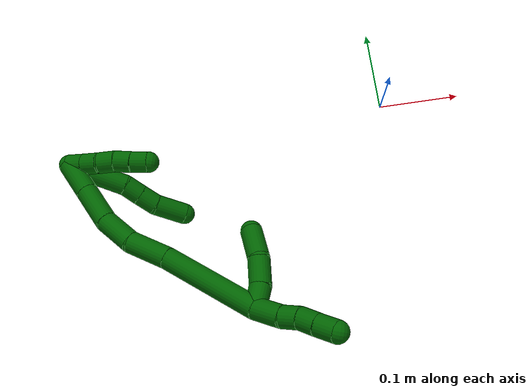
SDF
<sdf version="1.7">
 <world name="default">
  <model name="6">
   <static>0</static>
   <link name="6">
    <collision name="collision-cylinder-e_1_2_8">
     <pose>0.001189 -0.005785 -0.034299 2.97449 0.034183 0.402692</pose>
     <geometry><cylinder><radius>0.0125</radius><length>0.069607</length></cylinder></geometry>
     <surface>
      <friction><ode><mu>1.16</mu><mu2>1.16</mu2><slip1>0</slip1><slip2>0</slip2></ode></friction>
      <contact><ode><kp>1e+06</kp><kd>1</kd><max_vel>0</max_vel><min_depth>0.001</min_depth></ode></contact>
     </surface>
    </collision>
    <visual name="visual-cylinder-e_1_2_8">
     <pose>0.001189 -0.005785 -0.034299 2.97449 0.034183 0.402692</pose>
     <geometry><cylinder><radius>0.0125</radius><length>0.069607</length></cylinder></geometry>
     <material><ambient>0 0.392157 0.003922 1</ambient></material>
    </visual>
    <collision name="collision-cylinder-e_2_8_9">
     <pose>0.00352 -0.015585 -0.07815 2.74372 0.109656 0.531586</pose>
     <geometry><cylinder><radius>0.0125</radius><length>0.020849</length></cylinder></geometry>
     <surface>
      <friction><ode><mu>1.16</mu><mu2>1.16</mu2><slip1>0</slip1><slip2>0</slip2></ode></friction>
      <contact><ode><kp>1e+06</kp><kd>1</kd><max_vel>0</max_vel><min_depth>0.001</min_depth></ode></contact>
     </surface>
    </collision>
    <visual name="visual-cylinder-e_2_8_9">
     <pose>0.00352 -0.015585 -0.07815 2.74372 0.109656 0.531586</pose>
     <geometry><cylinder><radius>0.0125</radius><length>0.020849</length></cylinder></geometry>
     <material><ambient>0 0.392157 0.003922 1</ambient></material>
    </visual>
    <collision name="collision-cylinder-e_3_9_10">
     <pose>0.00586 -0.023644 -0.097995 2.76726 0.108067 0.556364</pose>
     <geometry><cylinder><radius>0.0125</radius><length>0.022248</length></cylinder></geometry>
     <surface>
      <friction><ode><mu>1.16</mu><mu2>1.16</mu2><slip1>0</slip1><slip2>0</slip2></ode></friction>
      <contact><ode><kp>1e+06</kp><kd>1</kd><max_vel>0</max_vel><min_depth>0.001</min_depth></ode></contact>
     </surface>
    </collision>
    <visual name="visual-cylinder-e_3_9_10">
     <pose>0.00586 -0.023644 -0.097995 2.76726 0.108067 0.556364</pose>
     <geometry><cylinder><radius>0.0125</radius><length>0.022248</length></cylinder></geometry>
     <material><ambient>0 0.392157 0.003922 1</ambient></material>
    </visual>
    <collision name="collision-cylinder-e_4_10_6">
     <pose>0.005109 -0.031378 -0.126463 2.94125 -0.104801 -0.961918</pose>
     <geometry><cylinder><radius>0.0125</radius><length>0.037296</length></cylinder></geometry>
     <surface>
      <friction><ode><mu>1.16</mu><mu2>1.16</mu2><slip1>0</slip1><slip2>0</slip2></ode></friction>
      <contact><ode><kp>1e+06</kp><kd>1</kd><max_vel>0</max_vel><min_depth>0.001</min_depth></ode></contact>
     </surface>
    </collision>
    <visual name="visual-cylinder-e_4_10_6">
     <pose>0.005109 -0.031378 -0.126463 2.94125 -0.104801 -0.961918</pose>
     <geometry><cylinder><radius>0.0125</radius><length>0.037296</length></cylinder></geometry>
     <material><ambient>0 0.392157 0.003922 1</ambient></material>
    </visual>
    <collision name="collision-cylinder-e_1_2_11">
     <pose>0.003006 0.003952 -0.00868 -2.71432 0.3053 -1.23368</pose>
     <geometry><cylinder><radius>0.0125</radius><length>0.02</length></cylinder></geometry>
     <surface>
      <friction><ode><mu>1.16</mu><mu2>1.16</mu2><slip1>0</slip1><slip2>0</slip2></ode></friction>
      <contact><ode><kp>1e+06</kp><kd>1</kd><max_vel>0</max_vel><min_depth>0.001</min_depth></ode></contact>
     </surface>
    </collision>
    <visual name="visual-cylinder-e_1_2_11">
     <pose>0.003006 0.003952 -0.00868 -2.71432 0.3053 -1.23368</pose>
     <geometry><cylinder><radius>0.0125</radius><length>0.02</length></cylinder></geometry>
     <material><ambient>0 0.392157 0.003922 1</ambient></material>
    </visual>
    <collision name="collision-cylinder-e_2_11_12">
     <pose>0.009183 0.012041 -0.025894 -2.69029 0.322747 -1.23366</pose>
     <geometry><cylinder><radius>0.0125</radius><length>0.02</length></cylinder></geometry>
     <surface>
      <friction><ode><mu>1.16</mu><mu2>1.16</mu2><slip1>0</slip1><slip2>0</slip2></ode></friction>
      <contact><ode><kp>1e+06</kp><kd>1</kd><max_vel>0</max_vel><min_depth>0.001</min_depth></ode></contact>
     </surface>
    </collision>
    <visual name="visual-cylinder-e_2_11_12">
     <pose>0.009183 0.012041 -0.025894 -2.69029 0.322747 -1.23366</pose>
     <geometry><cylinder><radius>0.0125</radius><length>0.02</length></cylinder></geometry>
     <material><ambient>0 0.392157 0.003922 1</ambient></material>
    </visual>
    <collision name="collision-cylinder-e_3_12_13">
     <pose>0.013674 0.019978 -0.043583 -2.74803 0.132251 -0.641407</pose>
     <geometry><cylinder><radius>0.0125</radius><length>0.02</length></cylinder></geometry>
     <surface>
      <friction><ode><mu>1.16</mu><mu2>1.16</mu2><slip1>0</slip1><slip2>0</slip2></ode></friction>
      <contact><ode><kp>1e+06</kp><kd>1</kd><max_vel>0</max_vel><min_depth>0.001</min_depth></ode></contact>
     </surface>
    </collision>
    <visual name="visual-cylinder-e_3_12_13">
     <pose>0.013674 0.019978 -0.043583 -2.74803 0.132251 -0.641407</pose>
     <geometry><cylinder><radius>0.0125</radius><length>0.02</length></cylinder></geometry>
     <material><ambient>0 0.392157 0.003922 1</ambient></material>
    </visual>
    <collision name="collision-cylinder-e_4_13_14">
     <pose>0.017053 0.026218 -0.062215 -2.88977 0.207517 -1.37679</pose>
     <geometry><cylinder><radius>0.0125</radius><length>0.02</length></cylinder></geometry>
     <surface>
      <friction><ode><mu>1.16</mu><mu2>1.16</mu2><slip1>0</slip1><slip2>0</slip2></ode></friction>
      <contact><ode><kp>1e+06</kp><kd>1</kd><max_vel>0</max_vel><min_depth>0.001</min_depth></ode></contact>
     </surface>
    </collision>
    <visual name="visual-cylinder-e_4_13_14">
     <pose>0.017053 0.026218 -0.062215 -2.88977 0.207517 -1.37679</pose>
     <geometry><cylinder><radius>0.0125</radius><length>0.02</length></cylinder></geometry>
     <material><ambient>0 0.392157 0.003922 1</ambient></material>
    </visual>
    <collision name="collision-cylinder-e_5_14_5">
     <pose>0.020512 0.031311 -0.081231 -2.87018 0.140332 -0.950704</pose>
     <geometry><cylinder><radius>0.0125</radius><length>0.02</length></cylinder></geometry>
     <surface>
      <friction><ode><mu>1.16</mu><mu2>1.16</mu2><slip1>0</slip1><slip2>0</slip2></ode></friction>
      <contact><ode><kp>1e+06</kp><kd>1</kd><max_vel>0</max_vel><min_depth>0.001</min_depth></ode></contact>
     </surface>
    </collision>
    <visual name="visual-cylinder-e_5_14_5">
     <pose>0.020512 0.031311 -0.081231 -2.87018 0.140332 -0.950704</pose>
     <geometry><cylinder><radius>0.0125</radius><length>0.02</length></cylinder></geometry>
     <material><ambient>0 0.392157 0.003922 1</ambient></material>
    </visual>
    <collision name="collision-cylinder-e_1_2_15">
     <pose>0.016916 -0.006409 -0.013903 2.70964 0.835214 2.22316</pose>
     <geometry><cylinder><radius>0.0125</radius><length>0.045631</length></cylinder></geometry>
     <surface>
      <friction><ode><mu>1.16</mu><mu2>1.16</mu2><slip1>0</slip1><slip2>0</slip2></ode></friction>
      <contact><ode><kp>1e+06</kp><kd>1</kd><max_vel>0</max_vel><min_depth>0.001</min_depth></ode></contact>
     </surface>
    </collision>
    <visual name="visual-cylinder-e_1_2_15">
     <pose>0.016916 -0.006409 -0.013903 2.70964 0.835214 2.22316</pose>
     <geometry><cylinder><radius>0.0125</radius><length>0.045631</length></cylinder></geometry>
     <material><ambient>0 0.392157 0.003922 1</ambient></material>
    </visual>
    <collision name="collision-cylinder-e_2_15_16">
     <pose>0.051536 -0.019598 -0.042298 2.70404 0.835922 2.21333</pose>
     <geometry><cylinder><radius>0.0125</radius><length>0.047723</length></cylinder></geometry>
     <surface>
      <friction><ode><mu>1.16</mu><mu2>1.16</mu2><slip1>0</slip1><slip2>0</slip2></ode></friction>
      <contact><ode><kp>1e+06</kp><kd>1</kd><max_vel>0</max_vel><min_depth>0.001</min_depth></ode></contact>
     </surface>
    </collision>
    <visual name="visual-cylinder-e_2_15_16">
     <pose>0.051536 -0.019598 -0.042298 2.70404 0.835922 2.21333</pose>
     <geometry><cylinder><radius>0.0125</radius><length>0.047723</length></cylinder></geometry>
     <material><ambient>0 0.392157 0.003922 1</ambient></material>
    </visual>
    <collision name="collision-cylinder-e_3_16_17">
     <pose>0.083128 -0.028652 -0.07283 3.00066 0.708748 2.76459</pose>
     <geometry><cylinder><radius>0.0125</radius><length>0.042679</length></cylinder></geometry>
     <surface>
      <friction><ode><mu>1.16</mu><mu2>1.16</mu2><slip1>0</slip1><slip2>0</slip2></ode></friction>
      <contact><ode><kp>1e+06</kp><kd>1</kd><max_vel>0</max_vel><min_depth>0.001</min_depth></ode></contact>
     </surface>
    </collision>
    <visual name="visual-cylinder-e_3_16_17">
     <pose>0.083128 -0.028652 -0.07283 3.00066 0.708748 2.76459</pose>
     <geometry><cylinder><radius>0.0125</radius><length>0.042679</length></cylinder></geometry>
     <material><ambient>0 0.392157 0.003922 1</ambient></material>
    </visual>
    <collision name="collision-cylinder-e_4_17_18">
     <pose>0.107886 -0.030344 -0.110122 -3.11414 0.472553 -3.0277</pose>
     <geometry><cylinder><radius>0.0125</radius><length>0.047754</length></cylinder></geometry>
     <surface>
      <friction><ode><mu>1.16</mu><mu2>1.16</mu2><slip1>0</slip1><slip2>0</slip2></ode></friction>
      <contact><ode><kp>1e+06</kp><kd>1</kd><max_vel>0</max_vel><min_depth>0.001</min_depth></ode></contact>
     </surface>
    </collision>
    <visual name="visual-cylinder-e_4_17_18">
     <pose>0.107886 -0.030344 -0.110122 -3.11414 0.472553 -3.0277</pose>
     <geometry><cylinder><radius>0.0125</radius><length>0.047754</length></cylinder></geometry>
     <material><ambient>0 0.392157 0.003922 1</ambient></material>
    </visual>
    <collision name="collision-cylinder-e_5_18_1">
     <pose>0.149106 -0.031987 -0.180873 3.09666 0.549614 2.98253</pose>
     <geometry><cylinder><radius>0.0125</radius><length>0.116214</length></cylinder></geometry>
     <surface>
      <friction><ode><mu>1.16</mu><mu2>1.16</mu2><slip1>0</slip1><slip2>0</slip2></ode></friction>
      <contact><ode><kp>1e+06</kp><kd>1</kd><max_vel>0</max_vel><min_depth>0.001</min_depth></ode></contact>
     </surface>
    </collision>
    <visual name="visual-cylinder-e_5_18_1">
     <pose>0.149106 -0.031987 -0.180873 3.09666 0.549614 2.98253</pose>
     <geometry><cylinder><radius>0.0125</radius><length>0.116214</length></cylinder></geometry>
     <material><ambient>0 0.392157 0.003922 1</ambient></material>
    </visual>
    <collision name="collision-cylinder-e_1_1_19">
     <pose>0.189331 -0.029863 -0.243354 -2.8183 0.624753 -2.20642</pose>
     <geometry><cylinder><radius>0.0125</radius><length>0.033759</length></cylinder></geometry>
     <surface>
      <friction><ode><mu>1.16</mu><mu2>1.16</mu2><slip1>0</slip1><slip2>0</slip2></ode></friction>
      <contact><ode><kp>1e+06</kp><kd>1</kd><max_vel>0</max_vel><min_depth>0.001</min_depth></ode></contact>
     </surface>
    </collision>
    <visual name="visual-cylinder-e_1_1_19">
     <pose>0.189331 -0.029863 -0.243354 -2.8183 0.624753 -2.20642</pose>
     <geometry><cylinder><radius>0.0125</radius><length>0.033759</length></cylinder></geometry>
     <material><ambient>0 0.392157 0.003922 1</ambient></material>
    </visual>
    <collision name="collision-cylinder-e_2_19_20">
     <pose>0.203711 -0.021388 -0.264827 -2.68928 0.445476 -1.55504</pose>
     <geometry><cylinder><radius>0.0125</radius><length>0.020921</length></cylinder></geometry>
     <surface>
      <friction><ode><mu>1.16</mu><mu2>1.16</mu2><slip1>0</slip1><slip2>0</slip2></ode></friction>
      <contact><ode><kp>1e+06</kp><kd>1</kd><max_vel>0</max_vel><min_depth>0.001</min_depth></ode></contact>
     </surface>
    </collision>
    <visual name="visual-cylinder-e_2_19_20">
     <pose>0.203711 -0.021388 -0.264827 -2.68928 0.445476 -1.55504</pose>
     <geometry><cylinder><radius>0.0125</radius><length>0.020921</length></cylinder></geometry>
     <material><ambient>0 0.392157 0.003922 1</ambient></material>
    </visual>
    <collision name="collision-cylinder-e_3_20_21">
     <pose>0.215022 -0.014884 -0.281387 -2.85502 0.680032 -2.36711</pose>
     <geometry><cylinder><radius>0.0125</radius><length>0.02164</length></cylinder></geometry>
     <surface>
      <friction><ode><mu>1.16</mu><mu2>1.16</mu2><slip1>0</slip1><slip2>0</slip2></ode></friction>
      <contact><ode><kp>1e+06</kp><kd>1</kd><max_vel>0</max_vel><min_depth>0.001</min_depth></ode></contact>
     </surface>
    </collision>
    <visual name="visual-cylinder-e_3_20_21">
     <pose>0.215022 -0.014884 -0.281387 -2.85502 0.680032 -2.36711</pose>
     <geometry><cylinder><radius>0.0125</radius><length>0.02164</length></cylinder></geometry>
     <material><ambient>0 0.392157 0.003922 1</ambient></material>
    </visual>
    <collision name="collision-cylinder-e_4_21_4">
     <pose>0.228941 -0.009733 -0.298505 -2.84419 0.644651 -2.29828</pose>
     <geometry><cylinder><radius>0.0125</radius><length>0.02368</length></cylinder></geometry>
     <surface>
      <friction><ode><mu>1.16</mu><mu2>1.16</mu2><slip1>0</slip1><slip2>0</slip2></ode></friction>
      <contact><ode><kp>1e+06</kp><kd>1</kd><max_vel>0</max_vel><min_depth>0.001</min_depth></ode></contact>
     </surface>
    </collision>
    <visual name="visual-cylinder-e_4_21_4">
     <pose>0.228941 -0.009733 -0.298505 -2.84419 0.644651 -2.29828</pose>
     <geometry><cylinder><radius>0.0125</radius><length>0.02368</length></cylinder></geometry>
     <material><ambient>0 0.392157 0.003922 1</ambient></material>
    </visual>
    <collision name="collision-cylinder-e_1_1_22">
     <pose>0.168232 -0.027372 -0.231921 -1.79338 -1.01242 1.21323</pose>
     <geometry><cylinder><radius>0.0125</radius><length>0.026475</length></cylinder></geometry>
     <surface>
      <friction><ode><mu>1.16</mu><mu2>1.16</mu2><slip1>0</slip1><slip2>0</slip2></ode></friction>
      <contact><ode><kp>1e+06</kp><kd>1</kd><max_vel>0</max_vel><min_depth>0.001</min_depth></ode></contact>
     </surface>
    </collision>
    <visual name="visual-cylinder-e_1_1_22">
     <pose>0.168232 -0.027372 -0.231921 -1.79338 -1.01242 1.21323</pose>
     <geometry><cylinder><radius>0.0125</radius><length>0.026475</length></cylinder></geometry>
     <material><ambient>0 0.392157 0.003922 1</ambient></material>
    </visual>
    <collision name="collision-cylinder-e_2_22_23">
     <pose>0.143754 -0.011791 -0.230913 -1.28629 -0.968654 0.751162</pose>
     <geometry><cylinder><radius>0.0125</radius><length>0.032157</length></cylinder></geometry>
     <surface>
      <friction><ode><mu>1.16</mu><mu2>1.16</mu2><slip1>0</slip1><slip2>0</slip2></ode></friction>
      <contact><ode><kp>1e+06</kp><kd>1</kd><max_vel>0</max_vel><min_depth>0.001</min_depth></ode></contact>
     </surface>
    </collision>
    <visual name="visual-cylinder-e_2_22_23">
     <pose>0.143754 -0.011791 -0.230913 -1.28629 -0.968654 0.751162</pose>
     <geometry><cylinder><radius>0.0125</radius><length>0.032157</length></cylinder></geometry>
     <material><ambient>0 0.392157 0.003922 1</ambient></material>
    </visual>
    <collision name="collision-cylinder-e_3_23_3">
     <pose>0.11103 0.001818 -0.223363 -0.772704 -1.2269 0.557891</pose>
     <geometry><cylinder><radius>0.0125</radius><length>0.041368</length></cylinder></geometry>
     <surface>
      <friction><ode><mu>1.16</mu><mu2>1.16</mu2><slip1>0</slip1><slip2>0</slip2></ode></friction>
      <contact><ode><kp>1e+06</kp><kd>1</kd><max_vel>0</max_vel><min_depth>0.001</min_depth></ode></contact>
     </surface>
    </collision>
    <visual name="visual-cylinder-e_3_23_3">
     <pose>0.11103 0.001818 -0.223363 -0.772704 -1.2269 0.557891</pose>
     <geometry><cylinder><radius>0.0125</radius><length>0.041368</length></cylinder></geometry>
     <material><ambient>0 0.392157 0.003922 1</ambient></material>
    </visual>
    <collision name="collision-sphere-3">
     <pose>0.091557 0.006687 -0.21837 0 -0 0</pose>
     <geometry><sphere><radius>0.0125</radius></sphere></geometry>
     <surface>
      <friction><ode><mu>1.16</mu><mu2>1.16</mu2><slip1>0</slip1><slip2>0</slip2></ode></friction>
      <contact><ode><kp>1e+06</kp><kd>1</kd><max_vel>0</max_vel><min_depth>0.001</min_depth></ode></contact>
     </surface>
    </collision>
    <visual name="visual-sphere-3">
     <pose>0.091557 0.006687 -0.21837 0 -0 0</pose>
     <geometry><sphere><radius>0.0125</radius></sphere></geometry>
     <material><ambient>0 0.392157 0.003922 1</ambient></material>
    </visual>
    <collision name="collision-sphere-23">
     <pose>0.130503 -0.00305 -0.228357 0 -0 0</pose>
     <geometry><sphere><radius>0.0125</radius></sphere></geometry>
     <surface>
      <friction><ode><mu>1.16</mu><mu2>1.16</mu2><slip1>0</slip1><slip2>0</slip2></ode></friction>
      <contact><ode><kp>1e+06</kp><kd>1</kd><max_vel>0</max_vel><min_depth>0.001</min_depth></ode></contact>
     </surface>
    </collision>
    <visual name="visual-sphere-23">
     <pose>0.130503 -0.00305 -0.228357 0 -0 0</pose>
     <geometry><sphere><radius>0.0125</radius></sphere></geometry>
     <material><ambient>0 0.392157 0.003922 1</ambient></material>
    </visual>
    <collision name="collision-sphere-22">
     <pose>0.157005 -0.020532 -0.233469 0 -0 0</pose>
     <geometry><sphere><radius>0.0125</radius></sphere></geometry>
     <surface>
      <friction><ode><mu>1.16</mu><mu2>1.16</mu2><slip1>0</slip1><slip2>0</slip2></ode></friction>
      <contact><ode><kp>1e+06</kp><kd>1</kd><max_vel>0</max_vel><min_depth>0.001</min_depth></ode></contact>
     </surface>
    </collision>
    <visual name="visual-sphere-22">
     <pose>0.157005 -0.020532 -0.233469 0 -0 0</pose>
     <geometry><sphere><radius>0.0125</radius></sphere></geometry>
     <material><ambient>0 0.392157 0.003922 1</ambient></material>
    </visual>
    <collision name="collision-sphere-4">
     <pose>0.236056 -0.00696 -0.307554 0 -0 0</pose>
     <geometry><sphere><radius>0.0125</radius></sphere></geometry>
     <surface>
      <friction><ode><mu>1.16</mu><mu2>1.16</mu2><slip1>0</slip1><slip2>0</slip2></ode></friction>
      <contact><ode><kp>1e+06</kp><kd>1</kd><max_vel>0</max_vel><min_depth>0.001</min_depth></ode></contact>
     </surface>
    </collision>
    <visual name="visual-sphere-4">
     <pose>0.236056 -0.00696 -0.307554 0 -0 0</pose>
     <geometry><sphere><radius>0.0125</radius></sphere></geometry>
     <material><ambient>0 0.392157 0.003922 1</ambient></material>
    </visual>
    <collision name="collision-sphere-21">
     <pose>0.221826 -0.012506 -0.289457 0 -0 0</pose>
     <geometry><sphere><radius>0.0125</radius></sphere></geometry>
     <surface>
      <friction><ode><mu>1.16</mu><mu2>1.16</mu2><slip1>0</slip1><slip2>0</slip2></ode></friction>
      <contact><ode><kp>1e+06</kp><kd>1</kd><max_vel>0</max_vel><min_depth>0.001</min_depth></ode></contact>
     </surface>
    </collision>
    <visual name="visual-sphere-21">
     <pose>0.221826 -0.012506 -0.289457 0 -0 0</pose>
     <geometry><sphere><radius>0.0125</radius></sphere></geometry>
     <material><ambient>0 0.392157 0.003922 1</ambient></material>
    </visual>
    <collision name="collision-sphere-20">
     <pose>0.208219 -0.017262 -0.273317 0 -0 0</pose>
     <geometry><sphere><radius>0.0125</radius></sphere></geometry>
     <surface>
      <friction><ode><mu>1.16</mu><mu2>1.16</mu2><slip1>0</slip1><slip2>0</slip2></ode></friction>
      <contact><ode><kp>1e+06</kp><kd>1</kd><max_vel>0</max_vel><min_depth>0.001</min_depth></ode></contact>
     </surface>
    </collision>
    <visual name="visual-sphere-20">
     <pose>0.208219 -0.017262 -0.273317 0 -0 0</pose>
     <geometry><sphere><radius>0.0125</radius></sphere></geometry>
     <material><ambient>0 0.392157 0.003922 1</ambient></material>
    </visual>
    <collision name="collision-sphere-11">
     <pose>0.006012 0.007904 -0.01736 0 -0 0</pose>
     <geometry><sphere><radius>0.0125</radius></sphere></geometry>
     <surface>
      <friction><ode><mu>1.16</mu><mu2>1.16</mu2><slip1>0</slip1><slip2>0</slip2></ode></friction>
      <contact><ode><kp>1e+06</kp><kd>1</kd><max_vel>0</max_vel><min_depth>0.001</min_depth></ode></contact>
     </surface>
    </collision>
    <visual name="visual-sphere-11">
     <pose>0.006012 0.007904 -0.01736 0 -0 0</pose>
     <geometry><sphere><radius>0.0125</radius></sphere></geometry>
     <material><ambient>0 0.392157 0.003922 1</ambient></material>
    </visual>
    <collision name="collision-sphere-6">
     <pose>0.003159 -0.035069 -0.144638 0 -0 0</pose>
     <geometry><sphere><radius>0.0125</radius></sphere></geometry>
     <surface>
      <friction><ode><mu>1.16</mu><mu2>1.16</mu2><slip1>0</slip1><slip2>0</slip2></ode></friction>
      <contact><ode><kp>1e+06</kp><kd>1</kd><max_vel>0</max_vel><min_depth>0.001</min_depth></ode></contact>
     </surface>
    </collision>
    <visual name="visual-sphere-6">
     <pose>0.003159 -0.035069 -0.144638 0 -0 0</pose>
     <geometry><sphere><radius>0.0125</radius></sphere></geometry>
     <material><ambient>0 0.392157 0.003922 1</ambient></material>
    </visual>
    <collision name="collision-sphere-10">
     <pose>0.00706 -0.027688 -0.108289 0 -0 0</pose>
     <geometry><sphere><radius>0.0125</radius></sphere></geometry>
     <surface>
      <friction><ode><mu>1.16</mu><mu2>1.16</mu2><slip1>0</slip1><slip2>0</slip2></ode></friction>
      <contact><ode><kp>1e+06</kp><kd>1</kd><max_vel>0</max_vel><min_depth>0.001</min_depth></ode></contact>
     </surface>
    </collision>
    <visual name="visual-sphere-10">
     <pose>0.00706 -0.027688 -0.108289 0 -0 0</pose>
     <geometry><sphere><radius>0.0125</radius></sphere></geometry>
     <material><ambient>0 0.392157 0.003922 1</ambient></material>
    </visual>
    <collision name="collision-sphere-9">
     <pose>0.004661 -0.0196 -0.087702 0 -0 0</pose>
     <geometry><sphere><radius>0.0125</radius></sphere></geometry>
     <surface>
      <friction><ode><mu>1.16</mu><mu2>1.16</mu2><slip1>0</slip1><slip2>0</slip2></ode></friction>
      <contact><ode><kp>1e+06</kp><kd>1</kd><max_vel>0</max_vel><min_depth>0.001</min_depth></ode></contact>
     </surface>
    </collision>
    <visual name="visual-sphere-9">
     <pose>0.004661 -0.0196 -0.087702 0 -0 0</pose>
     <geometry><sphere><radius>0.0125</radius></sphere></geometry>
     <material><ambient>0 0.392157 0.003922 1</ambient></material>
    </visual>
    <collision name="collision-sphere-2">
     <geometry><sphere><radius>0.0125</radius></sphere></geometry>
     <surface>
      <friction><ode><mu>1.16</mu><mu2>1.16</mu2><slip1>0</slip1><slip2>0</slip2></ode></friction>
      <contact><ode><kp>1e+06</kp><kd>1</kd><max_vel>0</max_vel><min_depth>0.001</min_depth></ode></contact>
     </surface>
    </collision>
    <visual name="visual-sphere-2">
     <geometry><sphere><radius>0.0125</radius></sphere></geometry>
     <material><ambient>0 0.392157 0.003922 1</ambient></material>
    </visual>
    <collision name="collision-sphere-19">
     <pose>0.199204 -0.025513 -0.256336 0 -0 0</pose>
     <geometry><sphere><radius>0.0125</radius></sphere></geometry>
     <surface>
      <friction><ode><mu>1.16</mu><mu2>1.16</mu2><slip1>0</slip1><slip2>0</slip2></ode></friction>
      <contact><ode><kp>1e+06</kp><kd>1</kd><max_vel>0</max_vel><min_depth>0.001</min_depth></ode></contact>
     </surface>
    </collision>
    <visual name="visual-sphere-19">
     <pose>0.199204 -0.025513 -0.256336 0 -0 0</pose>
     <geometry><sphere><radius>0.0125</radius></sphere></geometry>
     <material><ambient>0 0.392157 0.003922 1</ambient></material>
    </visual>
    <collision name="collision-sphere-8">
     <pose>0.002379 -0.011571 -0.068598 0 -0 0</pose>
     <geometry><sphere><radius>0.0125</radius></sphere></geometry>
     <surface>
      <friction><ode><mu>1.16</mu><mu2>1.16</mu2><slip1>0</slip1><slip2>0</slip2></ode></friction>
      <contact><ode><kp>1e+06</kp><kd>1</kd><max_vel>0</max_vel><min_depth>0.001</min_depth></ode></contact>
     </surface>
    </collision>
    <visual name="visual-sphere-8">
     <pose>0.002379 -0.011571 -0.068598 0 -0 0</pose>
     <geometry><sphere><radius>0.0125</radius></sphere></geometry>
     <material><ambient>0 0.392157 0.003922 1</ambient></material>
    </visual>
    <collision name="collision-sphere-12">
     <pose>0.012355 0.016177 -0.034429 0 -0 0</pose>
     <geometry><sphere><radius>0.0125</radius></sphere></geometry>
     <surface>
      <friction><ode><mu>1.16</mu><mu2>1.16</mu2><slip1>0</slip1><slip2>0</slip2></ode></friction>
      <contact><ode><kp>1e+06</kp><kd>1</kd><max_vel>0</max_vel><min_depth>0.001</min_depth></ode></contact>
     </surface>
    </collision>
    <visual name="visual-sphere-12">
     <pose>0.012355 0.016177 -0.034429 0 -0 0</pose>
     <geometry><sphere><radius>0.0125</radius></sphere></geometry>
     <material><ambient>0 0.392157 0.003922 1</ambient></material>
    </visual>
    <collision name="collision-sphere-13">
     <pose>0.014992 0.02378 -0.052738 0 -0 0</pose>
     <geometry><sphere><radius>0.0125</radius></sphere></geometry>
     <surface>
      <friction><ode><mu>1.16</mu><mu2>1.16</mu2><slip1>0</slip1><slip2>0</slip2></ode></friction>
      <contact><ode><kp>1e+06</kp><kd>1</kd><max_vel>0</max_vel><min_depth>0.001</min_depth></ode></contact>
     </surface>
    </collision>
    <visual name="visual-sphere-13">
     <pose>0.014992 0.02378 -0.052738 0 -0 0</pose>
     <geometry><sphere><radius>0.0125</radius></sphere></geometry>
     <material><ambient>0 0.392157 0.003922 1</ambient></material>
    </visual>
    <collision name="collision-sphere-14">
     <pose>0.019113 0.028656 -0.071692 0 -0 0</pose>
     <geometry><sphere><radius>0.0125</radius></sphere></geometry>
     <surface>
      <friction><ode><mu>1.16</mu><mu2>1.16</mu2><slip1>0</slip1><slip2>0</slip2></ode></friction>
      <contact><ode><kp>1e+06</kp><kd>1</kd><max_vel>0</max_vel><min_depth>0.001</min_depth></ode></contact>
     </surface>
    </collision>
    <visual name="visual-sphere-14">
     <pose>0.019113 0.028656 -0.071692 0 -0 0</pose>
     <geometry><sphere><radius>0.0125</radius></sphere></geometry>
     <material><ambient>0 0.392157 0.003922 1</ambient></material>
    </visual>
    <collision name="collision-sphere-5">
     <pose>0.02191 0.033965 -0.09077 0 -0 0</pose>
     <geometry><sphere><radius>0.0125</radius></sphere></geometry>
     <surface>
      <friction><ode><mu>1.16</mu><mu2>1.16</mu2><slip1>0</slip1><slip2>0</slip2></ode></friction>
      <contact><ode><kp>1e+06</kp><kd>1</kd><max_vel>0</max_vel><min_depth>0.001</min_depth></ode></contact>
     </surface>
    </collision>
    <visual name="visual-sphere-5">
     <pose>0.02191 0.033965 -0.09077 0 -0 0</pose>
     <geometry><sphere><radius>0.0125</radius></sphere></geometry>
     <material><ambient>0 0.392157 0.003922 1</ambient></material>
    </visual>
    <collision name="collision-sphere-15">
     <pose>0.033832 -0.012819 -0.027807 0 -0 0</pose>
     <geometry><sphere><radius>0.0125</radius></sphere></geometry>
     <surface>
      <friction><ode><mu>1.16</mu><mu2>1.16</mu2><slip1>0</slip1><slip2>0</slip2></ode></friction>
      <contact><ode><kp>1e+06</kp><kd>1</kd><max_vel>0</max_vel><min_depth>0.001</min_depth></ode></contact>
     </surface>
    </collision>
    <visual name="visual-sphere-15">
     <pose>0.033832 -0.012819 -0.027807 0 -0 0</pose>
     <geometry><sphere><radius>0.0125</radius></sphere></geometry>
     <material><ambient>0 0.392157 0.003922 1</ambient></material>
    </visual>
    <collision name="collision-sphere-16">
     <pose>0.069239 -0.026377 -0.05679 0 -0 0</pose>
     <geometry><sphere><radius>0.0125</radius></sphere></geometry>
     <surface>
      <friction><ode><mu>1.16</mu><mu2>1.16</mu2><slip1>0</slip1><slip2>0</slip2></ode></friction>
      <contact><ode><kp>1e+06</kp><kd>1</kd><max_vel>0</max_vel><min_depth>0.001</min_depth></ode></contact>
     </surface>
    </collision>
    <visual name="visual-sphere-16">
     <pose>0.069239 -0.026377 -0.05679 0 -0 0</pose>
     <geometry><sphere><radius>0.0125</radius></sphere></geometry>
     <material><ambient>0 0.392157 0.003922 1</ambient></material>
    </visual>
    <collision name="collision-sphere-17">
     <pose>0.097018 -0.030928 -0.08887 0 -0 0</pose>
     <geometry><sphere><radius>0.0125</radius></sphere></geometry>
     <surface>
      <friction><ode><mu>1.16</mu><mu2>1.16</mu2><slip1>0</slip1><slip2>0</slip2></ode></friction>
      <contact><ode><kp>1e+06</kp><kd>1</kd><max_vel>0</max_vel><min_depth>0.001</min_depth></ode></contact>
     </surface>
    </collision>
    <visual name="visual-sphere-17">
     <pose>0.097018 -0.030928 -0.08887 0 -0 0</pose>
     <geometry><sphere><radius>0.0125</radius></sphere></geometry>
     <material><ambient>0 0.392157 0.003922 1</ambient></material>
    </visual>
    <collision name="collision-sphere-18">
     <pose>0.118753 -0.029761 -0.131374 0 -0 0</pose>
     <geometry><sphere><radius>0.0125</radius></sphere></geometry>
     <surface>
      <friction><ode><mu>1.16</mu><mu2>1.16</mu2><slip1>0</slip1><slip2>0</slip2></ode></friction>
      <contact><ode><kp>1e+06</kp><kd>1</kd><max_vel>0</max_vel><min_depth>0.001</min_depth></ode></contact>
     </surface>
    </collision>
    <visual name="visual-sphere-18">
     <pose>0.118753 -0.029761 -0.131374 0 -0 0</pose>
     <geometry><sphere><radius>0.0125</radius></sphere></geometry>
     <material><ambient>0 0.392157 0.003922 1</ambient></material>
    </visual>
    <collision name="collision-sphere-1">
     <pose>0.179459 -0.034212 -0.230373 0 -0 0</pose>
     <geometry><sphere><radius>0.0125</radius></sphere></geometry>
     <surface>
      <friction><ode><mu>1.16</mu><mu2>1.16</mu2><slip1>0</slip1><slip2>0</slip2></ode></friction>
      <contact><ode><kp>1e+06</kp><kd>1</kd><max_vel>0</max_vel><min_depth>0.001</min_depth></ode></contact>
     </surface>
    </collision>
    <visual name="visual-sphere-1">
     <pose>0.179459 -0.034212 -0.230373 0 -0 0</pose>
     <geometry><sphere><radius>0.0125</radius></sphere></geometry>
     <material><ambient>0 0.392157 0.003922 1</ambient></material>
    </visual>
    <inertial>
     <pose>0.087203 -0.014943 -0.129473 0 -0 0</pose>
     <mass>0.75</mass>
     <inertia>
      <ixx>-5.5e-05</ixx>
      <ixy>0</ixy>
      <ixz>0</ixz>
      <iyy>0.000185</iyy>
      <iyz>0</iyz>
      <izz>-0.000124</izz>
     </inertia>
    </inertial>
   </link>
   <pose>-0.388474 -0.037013 0.057145 1.31116 -0.829573 -1.67271</pose>
  </model>
 </world>
</sdf>
